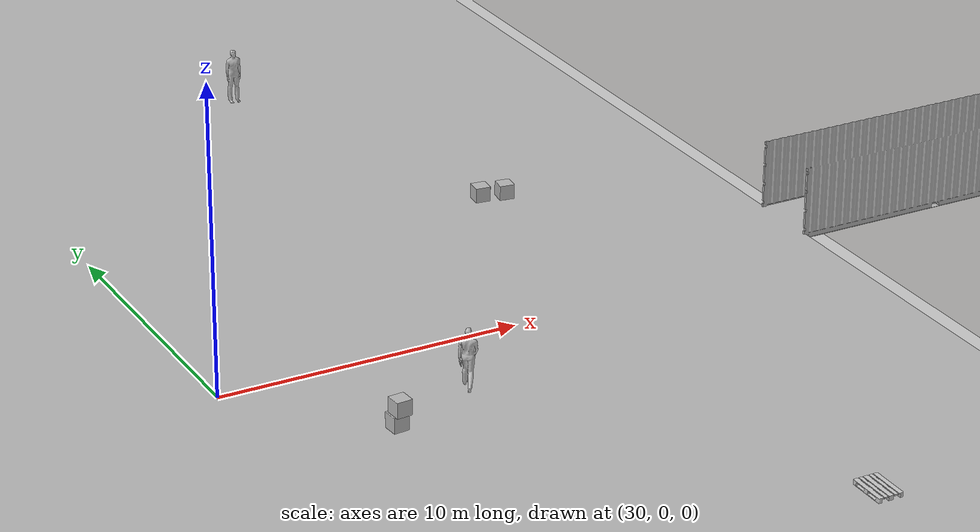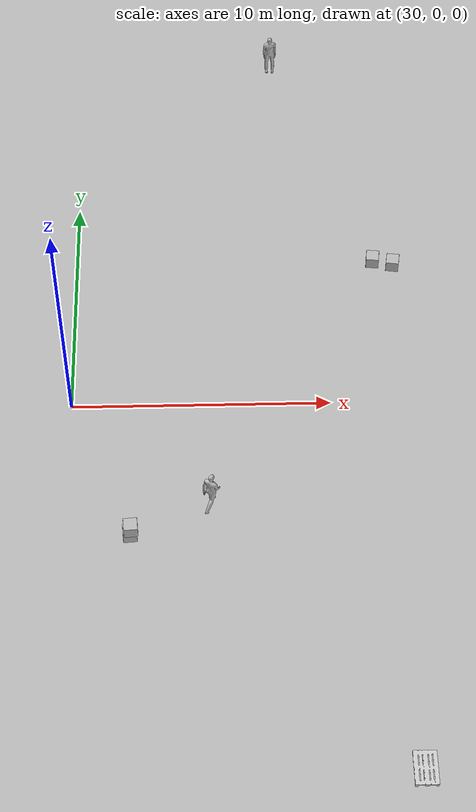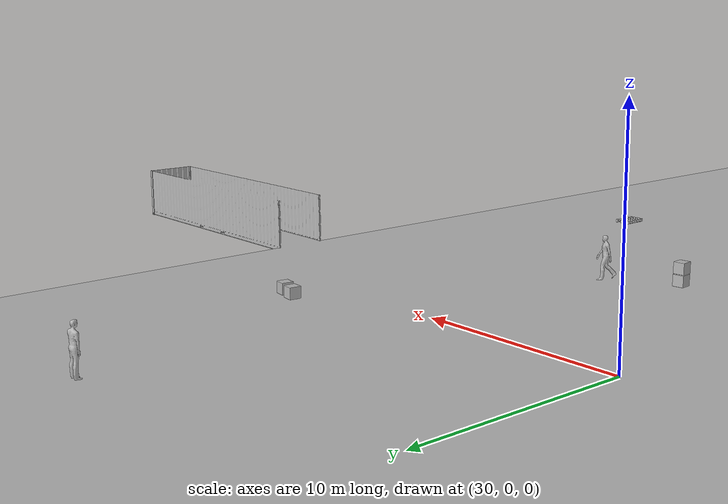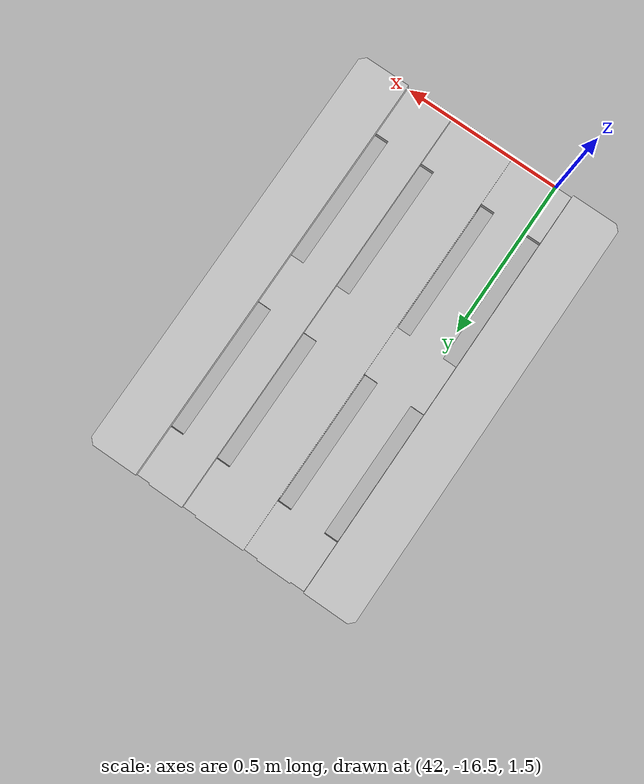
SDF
<sdf version="1.7">
 <world name="default">
  <light name="sun" type="directional">
   <pose>0 0 10 0 -0 0</pose>
   <diffuse>0.8 0.8 0.8 1</diffuse>
   <specular>0.2 0.2 0.2 1</specular>
   <attenuation>
    <range>1000</range>
    <constant>0.9</constant>
    <linear>0.01</linear>
    <quadratic>0.001</quadratic>
   </attenuation>
   <direction>-0.5 0.1 -0.9</direction>
   <spot><inner_angle>0</inner_angle><outer_angle>0</outer_angle><falloff>0</falloff></spot>
  </light>
  <model name="ground_plane">
   <static>1</static>
   <link name="link">
    <collision name="collision">
     <geometry><plane><normal>0 0 1</normal><size>100 100</size></plane></geometry>
     <surface>
      <contact><collide_bitmask>65535</collide_bitmask></contact>
      <friction><ode><mu>100</mu><mu2>50</mu2></ode></friction>
     </surface>
    </collision>
    <visual name="visual">
     <cast_shadows>0</cast_shadows>
     <geometry><plane><normal>0 0 1</normal><size>100 100</size></plane></geometry>
     <material>
      <script><uri>file://media/materials/scripts/gazebo.material</uri><name>Gazebo/Grey</name></script>
     </material>
    </visual>
   </link>
  </model>
  <gravity>0 0 -9.8</gravity>
  <magnetic_field>6e-06 2.3e-05 -4.2e-05</magnetic_field>
  <atmosphere type="adiabatic"/>
  <physics type="ode">
   <max_step_size>0.001</max_step_size>
   <real_time_factor>1</real_time_factor>
   <real_time_update_rate>1000</real_time_update_rate>
  </physics>
  <scene><ambient>0.4 0.4 0.4 1</ambient><background>0.7 0.7 0.7 1</background><shadows>1</shadows></scene>
  <spherical_coordinates>
   <surface_model>EARTH_WGS84</surface_model>
   <latitude_deg>0</latitude_deg>
   <longitude_deg>0</longitude_deg>
   <elevation>0</elevation>
   <heading_deg>0</heading_deg>
  </spherical_coordinates>
  <model name="euro_pallet">
   <link name="link">
    <pose>0 0 0.05 0 -0 0</pose>
    <inertial>
     <mass>20</mass>
     <inertia><ixx>2.43</ixx><ixy>0</ixy><ixz>0</ixz><iyy>1.1</iyy><iyz>0</iyz><izz>3.47</izz></inertia>
    </inertial>
    <collision name="collision">
     <pose>0 0 0.05 0 -0 0</pose>
     <geometry><mesh><uri>model://euro_pallet/meshes/pallet.dae</uri><scale>0.1 0.1 0.1</scale></mesh></geometry>
    </collision>
    <visual name="visual">
     <pose>0 0 0.05 0 -0 0</pose>
     <geometry><mesh><uri>model://euro_pallet/meshes/pallet.dae</uri><scale>0.1 0.1 0.1</scale></mesh></geometry>
    </visual>
   </link>
   <pose>42.214 -15.8161 1.67945 0 -0 0</pose>
  </model>
  <model name="500x500x500_box_clone">
   <link name="link">
    <collision name="collision">
     <geometry>
      <mesh><scale>1 1 1</scale><uri>model://500x500x500_box/meshes/500x500x500_box_v2.dae</uri></mesh>
     </geometry>
    </collision>
    <visual name="visual">
     <geometry>
      <mesh><scale>1 1 1</scale><uri>model://500x500x500_box/meshes/500x500x500_box_v2.dae</uri></mesh>
     </geometry>
    </visual>
    <inertial>
     <inertia><ixx>1</ixx><ixy>0</ixy><ixz>0</ixz><iyy>1</iyy><iyz>0</iyz><izz>1</izz></inertia>
     <mass>1</mass>
    </inertial>
   </link>
   <pose>32.4287 -6.84064 1.93513 1.57174 2.1e-05 0.079145</pose>
  </model>
  <model name="500x500x500_box_clone_clone">
   <link name="link">
    <collision name="collision">
     <geometry>
      <mesh><scale>1 1 1</scale><uri>model://500x500x500_box/meshes/500x500x500_box_v2.dae</uri></mesh>
     </geometry>
    </collision>
    <visual name="visual">
     <geometry>
      <mesh><scale>1 1 1</scale><uri>model://500x500x500_box/meshes/500x500x500_box_v2.dae</uri></mesh>
     </geometry>
    </visual>
    <inertial>
     <inertia><ixx>1</ixx><ixy>0</ixy><ixz>0</ixz><iyy>1</iyy><iyz>0</iyz><izz>1</izz></inertia>
     <mass>1</mass>
    </inertial>
   </link>
   <pose>32.478 -6.92722 2.43503 3.14156 0.000945 -1.49858</pose>
  </model>
  <model name="500x500x500_box_clone_clone_clone_clone_clone_0">
   <link name="link">
    <collision name="collision">
     <geometry>
      <mesh><scale>1 1 1</scale><uri>model://500x500x500_box/meshes/500x500x500_box_v2.dae</uri></mesh>
     </geometry>
    </collision>
    <visual name="visual">
     <geometry>
      <mesh><scale>1 1 1</scale><uri>model://500x500x500_box/meshes/500x500x500_box_v2.dae</uri></mesh>
     </geometry>
    </visual>
    <inertial>
     <inertia><ixx>1</ixx><ixy>0</ixy><ixz>0</ixz><iyy>1</iyy><iyz>0</iyz><izz>1</izz></inertia>
     <mass>1</mass>
    </inertial>
   </link>
   <pose>41.8786 5.70441 1.79086 -1.61386 -1.57079 1.50779</pose>
  </model>
  <model name="500x500x500_box_clone_clone_clone_clone_clone_0_clone">
   <link name="link">
    <collision name="collision">
     <geometry>
      <mesh><scale>1 1 1</scale><uri>model://500x500x500_box/meshes/500x500x500_box_v2.dae</uri></mesh>
     </geometry>
    </collision>
    <visual name="visual">
     <geometry>
      <mesh><scale>1 1 1</scale><uri>model://500x500x500_box/meshes/500x500x500_box_v2.dae</uri></mesh>
     </geometry>
    </visual>
    <inertial>
     <inertia><ixx>1</ixx><ixy>0</ixy><ixz>0</ixz><iyy>1</iyy><iyz>0</iyz><izz>1</izz></inertia>
     <mass>1</mass>
    </inertial>
   </link>
   <pose>42.6611 5.51349 1.79086 0 -1e-06 -0.143146</pose>
  </model>
  <model name="person_walking">
   <link name="link">
    <inertial>
     <pose>0 0 0.95 0 -0 0</pose>
     <mass>80</mass>
     <inertia><ixx>27.82</ixx><ixy>0</ixy><ixz>0</ixz><iyy>24.88</iyy><iyz>0</iyz><izz>4.57</izz></inertia>
    </inertial>
    <collision name="bottom">
     <pose>0 0 0.01 0 -0 0</pose>
     <geometry><box><size>0.35 0.75 0.02</size></box></geometry>
    </collision>
    <collision name="person">
     <pose>0 0 -0.02 0 -0 0</pose>
     <geometry><mesh><uri>model://person_walking/meshes/walking.dae</uri></mesh></geometry>
    </collision>
    <visual name="visual">
     <pose>0 0 -0.02 0 -0 0</pose>
     <geometry><mesh><uri>model://person_walking/meshes/walking.dae</uri></mesh></geometry>
    </visual>
   </link>
   <pose>35.3185 -5.58346 1.63214 0 -0 2.50738</pose>
  </model>
  <model name="person_standing">
   <link name="link">
    <inertial>
     <pose>0 -0.1 0.95 0 -0 0</pose>
     <mass>80</mass>
     <inertia><ixx>24.88</ixx><ixy>0</ixy><ixz>0</ixz><iyy>25.73</iyy><iyz>0</iyz><izz>2.48</izz></inertia>
    </inertial>
    <collision name="bottom">
     <pose>0 -0.1 0.01 0 -0 0</pose>
     <geometry><box><size>0.5 0.35 0.02</size></box></geometry>
    </collision>
    <collision name="person">
     <pose>0 0 0.02 0.04 -0 0</pose>
     <geometry><mesh><uri>model://person_standing/meshes/standing.dae</uri></mesh></geometry>
    </collision>
    <visual name="visual">
     <pose>0 0 0.02 0.04 -0 0</pose>
     <geometry><mesh><uri>model://person_standing/meshes/standing.dae</uri></mesh></geometry>
    </visual>
   </link>
   <pose>38.1081 16.6187 1.66182 0 -0 0</pose>
  </model>
  <light name="user_spot_light_0" type="spot">
   <pose>11.212 0.27236 1 0 -0 0</pose>
   <diffuse>0.5 0.5 0.5 1</diffuse>
   <specular>0.1 0.1 0.1 1</specular>
   <direction>0 0 -1</direction>
   <attenuation>
    <range>20</range>
    <constant>0.5</constant>
    <linear>0.01</linear>
    <quadratic>0.001</quadratic>
   </attenuation>
   <cast_shadows>0</cast_shadows>
   <spot><inner_angle>0.6</inner_angle><outer_angle>1</outer_angle><falloff>1</falloff></spot>
  </light>
  <light name="user_point_light_0" type="point">
   <pose>25.3341 6.71963 1 0 -0 0</pose>
   <diffuse>0.5 0.5 0.5 1</diffuse>
   <specular>0.1 0.1 0.1 1</specular>
   <attenuation>
    <range>20</range>
    <constant>0.5</constant>
    <linear>0.01</linear>
    <quadratic>0.001</quadratic>
   </attenuation>
   <cast_shadows>0</cast_shadows>
   <direction>0 0 -1</direction>
   <spot><inner_angle>0</inner_angle><outer_angle>0</outer_angle><falloff>0</falloff></spot>
  </light>
  <light name="user_directional_light_0" type="directional">
   <pose>24.1035 -20.3711 1 0 -0 0</pose>
   <diffuse>0.5 0.5 0.5 1</diffuse>
   <specular>0.1 0.1 0.1 1</specular>
   <direction>0.1 0.1 -0.9</direction>
   <attenuation>
    <range>20</range>
    <constant>0.5</constant>
    <linear>0.01</linear>
    <quadratic>0.001</quadratic>
   </attenuation>
   <spot><inner_angle>0</inner_angle><outer_angle>0</outer_angle><falloff>0</falloff></spot>
  </light>
  <model name="Warehouse_with_open_top_container">
   <static>1</static>
   <link name="link">
    <collision name="collision">
     <geometry>
      <mesh><uri>model://warehouse_03/meshes/open_top.stl</uri><scale>0.001 0.001 0.001</scale></mesh>
     </geometry>
    </collision>
    <visual name="visual">
     <geometry>
      <mesh><uri>model://warehouse_03/meshes/open_top.stl</uri><scale>0.001 0.001 0.001</scale></mesh>
     </geometry>
    </visual>
   </link>
   <pose>49.6741 -0.204883 0 0 -0 1.57173</pose>
  </model>
 </world>
</sdf>
